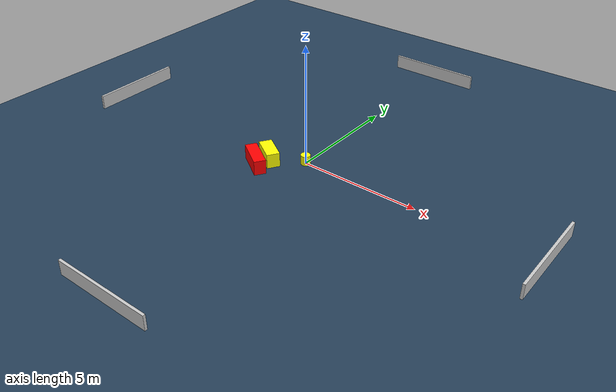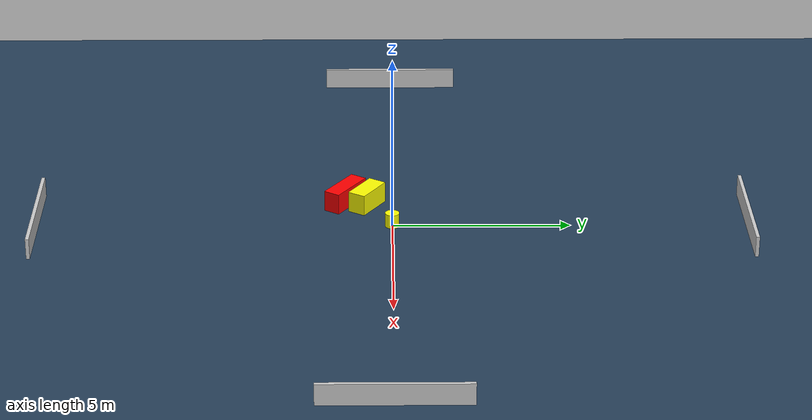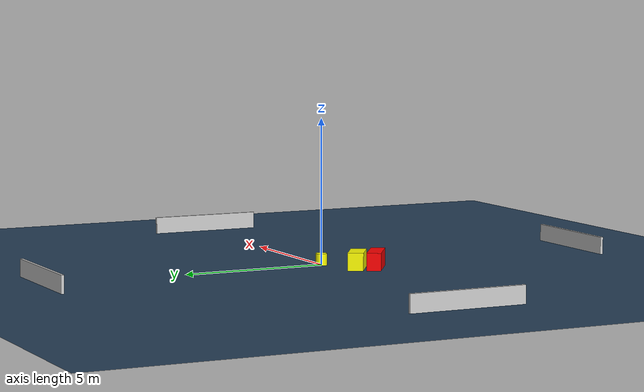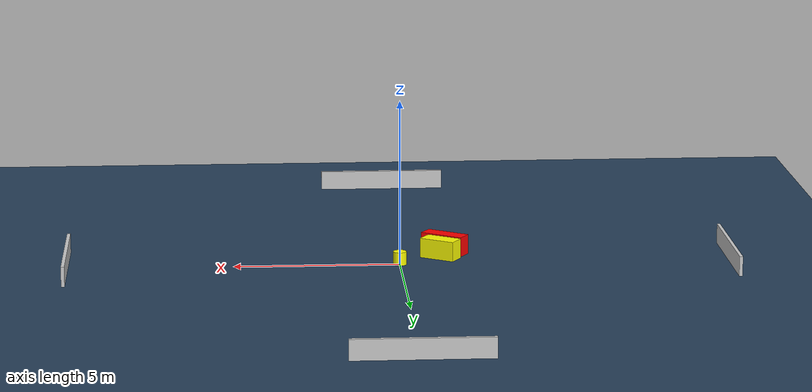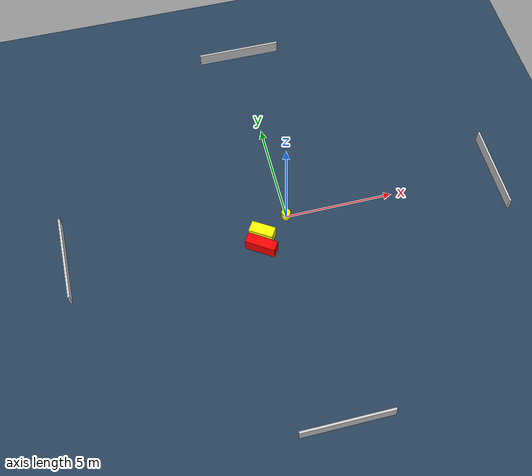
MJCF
<?xml version="1.0" ?>
<mujoco model="generated_environment">
  <option timestep="0.01" integrator="RK4" cone="elliptic"/>
  <default>
    <geom density="1"/>
  </default>
  <asset>
    <texture builtin="gradient" height="3072" name="skybox" rgb1="0.3 0.5 0.7" rgb2="0 0 0" type="skybox" width="512"/>
    <texture builtin="checker" height="300" name="groundplane" rgb1="0.2 0.3 0.4" rgb2="0.1 0.2 0.3" type="2d" width="300"/>
    <material name="groundplane" reflectance="0.2" texrepeat="5 5" texture="groundplane"/>
  </asset>
  <worldbody>
    <light dir="0 0 -1" directional="true" pos="0 0 1.5"/>
    <geom condim="3" friction="0.5 0.005 0.001" material="groundplane" name="floor" pos="0 0 0" size="0 0 0.05" type="plane"/>
    <body name="walls">
      <geom name="wall_1" condim="4" pos="-10.0 0.0 0.3" rgba="0.800000011920929 0.800000011920929 0.800000011920929 1.0" size="0.05 2.0 0.3" type="box"/>
      <geom name="wall_2" condim="4" pos="10.0 0.0 0.3" rgba="0.800000011920929 0.800000011920929 0.800000011920929 1.0" size="0.05 2.0 0.3" type="box"/>
      <geom name="wall_3" condim="4" pos="0.0 -10.0 0.3" rgba="0.800000011920929 0.800000011920929 0.800000011920929 1.0" size="2.0 0.05 0.3" type="box"/>
      <geom name="wall_4" condim="4" pos="0.0 10.0 0.3" rgba="0.800000011920929 0.800000011920929 0.800000011920929 1.0" size="2.0 0.05 0.3" type="box"/>
    </body>
    <body name="robot">
      <joint name="joint_x" type="slide" pos="0 0 0" axis="1 0 0"/>
      <joint name="joint_y" type="slide" pos="0 0 0" axis="0 1 0"/>
      <geom name="robot" type="cylinder" pos="0.0 0.0 0.2" size="0.2 0.2 0.0" mass="5.0" friction="1.0 0.005 0.0001" condim="4" rgba="1.0 1.0 0.0 1.0"/>
    </body>
    <body name="obstacle_1_movable">
      <geom name="obstacle_1_movable" condim="4" pos="-1.2755418649464934 -0.7120600691385027 0.3" euler="0 0 147.37686319722928" friction="0.0 0.005 0.001" rgba="1.0 1.0 0.0 1.0" size="0.5573462776151948 0.26442001175209223 0.3" type="box" mass="0.1"/>
      <joint type="free"/>
    </body>
    <body name="obstacle_2_static">
      <geom name="obstacle_2_static" condim="4" pos="-1.4539759103683292 -1.334332377907738 0.3" euler="0 0 326.4126069769026" friction="0.0 0.005 0.001" rgba="1.0 0.0 0.0 1.0" size="0.6869125629989803 0.24081024565508885 0.3" type="box"/>
    </body>
  </worldbody>
  <actuator>
    <motor name="actuator_x" joint="joint_x" gear="1" ctrlrange="-1 1"/>
    <motor name="actuator_y" joint="joint_y" gear="1" ctrlrange="-1 1"/>
  </actuator>
</mujoco>
